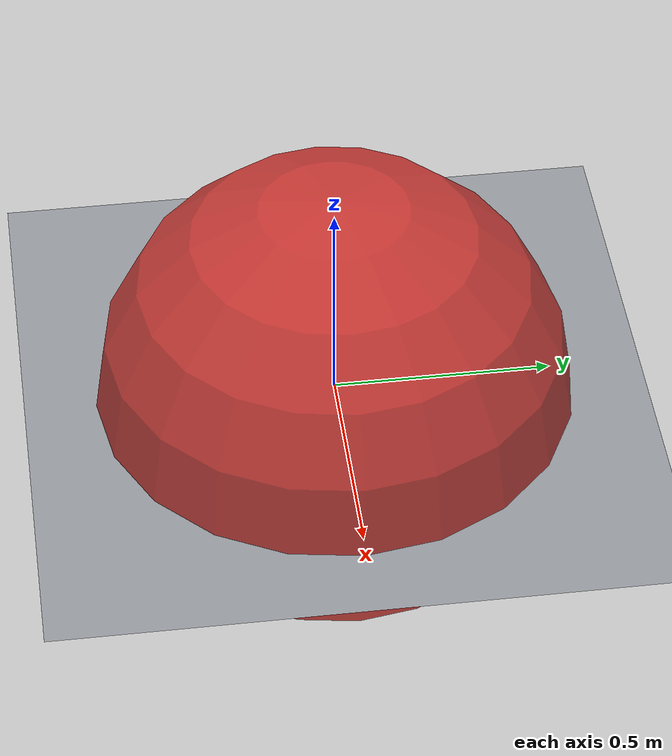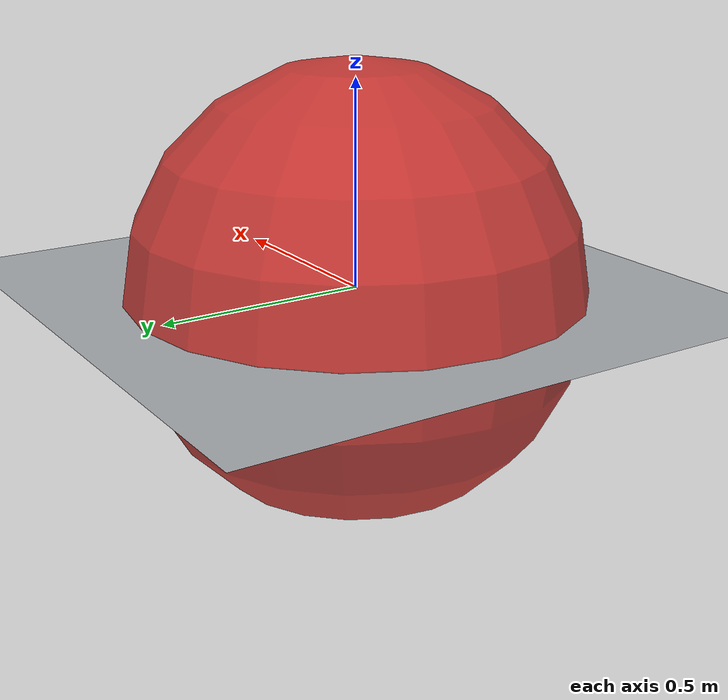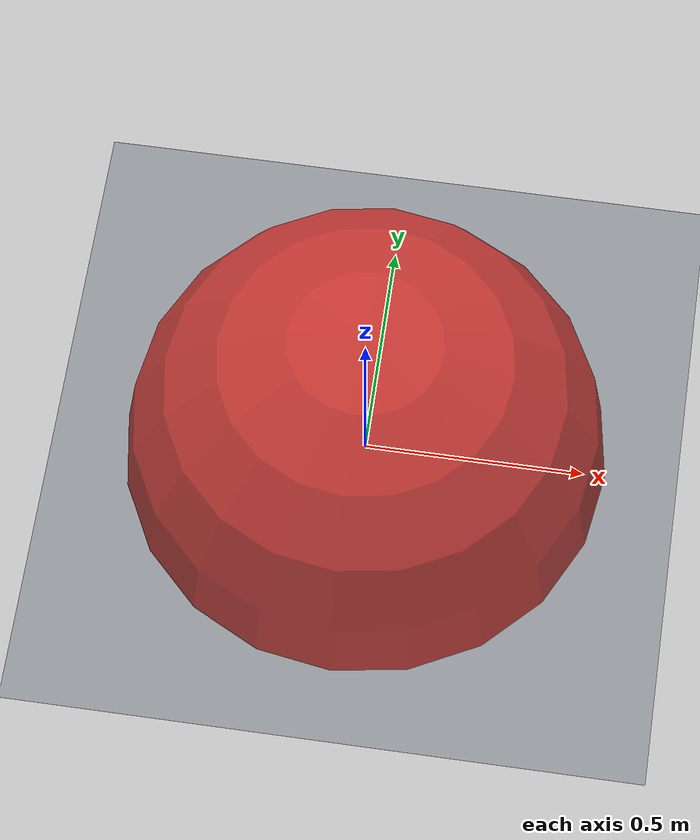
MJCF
<mujoco model="cf21B motor-off contact continuation"><compiler angle="radian" inertiafromgeom="false" /><option timestep="0.001" gravity="0 0 -9.8100000000000005" integrator="implicitfast" solver="Newton" iterations="100" tolerance="1e-10" /><default><geom condim="6" friction="0.69999999999999996 0.01 0.001" solref="0.006 1" solimp="0.95 0.99 0.001" margin="0" /></default><worldbody><light pos="0 0 5" dir="0 0 -1" /><geom name="ground" type="plane" size="20 20 0.1" pos="0 0 0.0" rgba="0.18 0.23 0.29 1" contype="2" conaffinity="1" /><body name="drone"><freejoint name="drone_free" align="false" /><inertial pos="0 0 0" mass="0.04338" fullinertia="2.5000000000000001e-05 2.8e-05 4.8999999999999998e-05 0 0 0" /><geom name="drone_collider" type="sphere" size="0.086" pos="0 0 0.02" rgba="0.15 0.7 0.95 0.45" contype="1" conaffinity="2" /></body><body name="obstacle_0" gravcomp="1"><freejoint name="obstacle_free_0" align="false" /><inertial pos="0 0 0" mass="1000.0" diaginertia="121.0000052452088 121.0000052452088 121.0000052452088" /><geom name="obstacle_geom_0" type="sphere" size="0.550000011920929" rgba="0.8 0.12 0.1 0.8" contype="2" conaffinity="1" /></body><body name="obstacle_1" gravcomp="1"><freejoint name="obstacle_free_1" align="false" /><inertial pos="0 0 0" mass="1000.0" diaginertia="121.0000052452088 121.0000052452088 121.0000052452088" /><geom name="obstacle_geom_1" type="sphere" size="0.550000011920929" rgba="0.8 0.12 0.1 0.8" contype="2" conaffinity="1" /></body></worldbody></mujoco>
